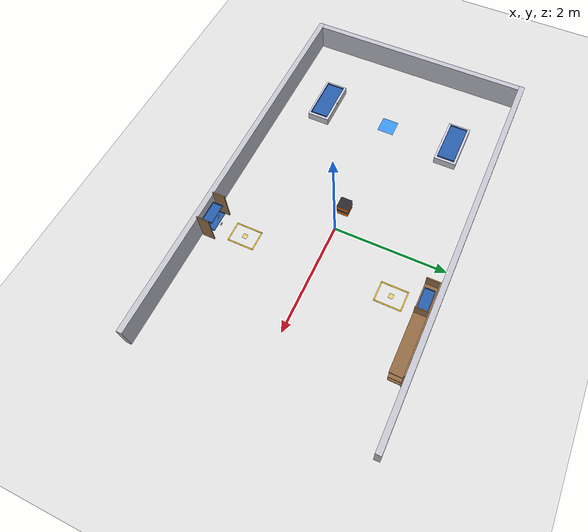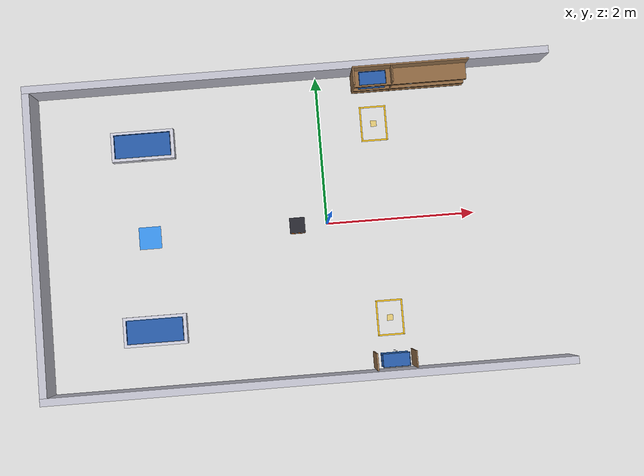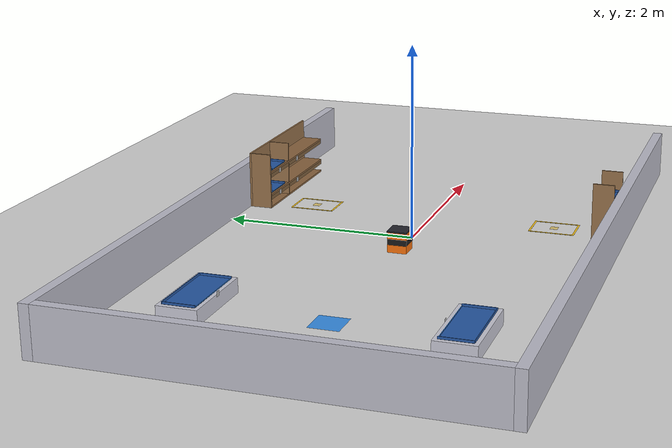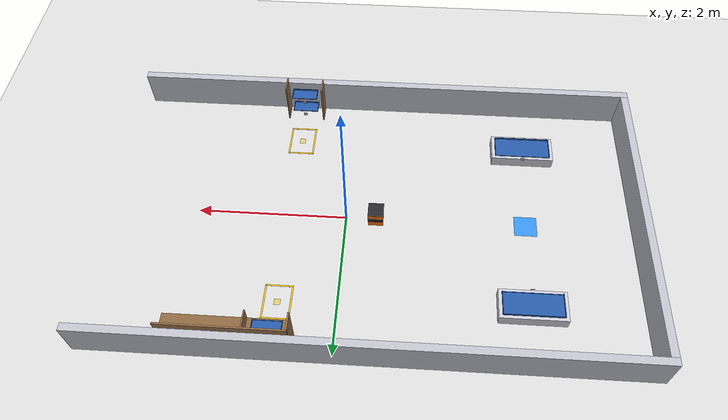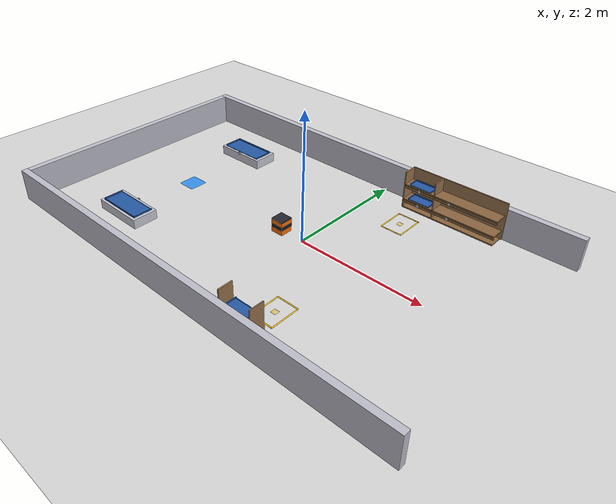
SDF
<sdf version="1.6">
 <world name="warehouse">
  <model name="ground_plane">
   <static>true</static>
   <link name="link">
    <collision name="col">
     <geometry><plane><normal>0 0 1</normal><size>10.0 6.0</size></plane></geometry>
     <surface><friction><ode><mu>1.0</mu><mu2>1.0</mu2></ode></friction></surface>
    </collision>
    <visual name="vis">
     <cast_shadows>false</cast_shadows>
     <geometry><plane><normal>0 0 1</normal><size>10.0 6.0</size></plane></geometry>
     <material><ambient>0.85 0.85 0.85 1</ambient><diffuse>0.85 0.85 0.85 1</diffuse></material>
    </visual>
   </link>
  </model>
  <model name="wall_north">
   <static>true</static>
   <pose>-0.4000 2.0500 0.2500 0.000000 0.000000 0.000000</pose>
   <link name="link">
    <collision name="col">
     <geometry><box><size>7.0 0.1 0.5</size></box></geometry>
     <surface><friction><ode><mu>1.0</mu><mu2>1.0</mu2></ode></friction></surface>
    </collision>
    <visual name="vis">
     <cast_shadows>false</cast_shadows>
     <geometry><box><size>7.0 0.1 0.5</size></box></geometry>
     <material><ambient>0.75 0.75 0.80 1.0</ambient><diffuse>0.75 0.75 0.80 1.0</diffuse></material>
    </visual>
   </link>
  </model>
  <model name="wall_south">
   <static>true</static>
   <pose>-0.4000 -2.0500 0.2500 0.000000 0.000000 0.000000</pose>
   <link name="link">
    <collision name="col">
     <geometry><box><size>7.0 0.1 0.5</size></box></geometry>
     <surface><friction><ode><mu>1.0</mu><mu2>1.0</mu2></ode></friction></surface>
    </collision>
    <visual name="vis">
     <cast_shadows>false</cast_shadows>
     <geometry><box><size>7.0 0.1 0.5</size></box></geometry>
     <material><ambient>0.75 0.75 0.80 1.0</ambient><diffuse>0.75 0.75 0.80 1.0</diffuse></material>
    </visual>
   </link>
  </model>
  <model name="wall_west">
   <static>true</static>
   <pose>-3.8500 0.0000 0.2500 0.000000 0.000000 0.000000</pose>
   <link name="link">
    <collision name="col">
     <geometry><box><size>0.1 4.0 0.5</size></box></geometry>
     <surface><friction><ode><mu>1.0</mu><mu2>1.0</mu2></ode></friction></surface>
    </collision>
    <visual name="vis">
     <cast_shadows>false</cast_shadows>
     <geometry><box><size>0.1 4.0 0.5</size></box></geometry>
     <material><ambient>0.75 0.75 0.80 1.0</ambient><diffuse>0.75 0.75 0.80 1.0</diffuse></material>
    </visual>
   </link>
  </model>
  <model name="rack_a_back_wall">
   <static>true</static>
   <pose>1.2500 1.9900 0.3000 0.000000 0.000000 0.000000</pose>
   <link name="link">
    <collision name="col">
     <geometry><box><size>1.54 0.02 0.6</size></box></geometry>
     <surface><friction><ode><mu>0.5</mu><mu2>0.5</mu2></ode></friction></surface>
    </collision>
    <visual name="vis">
     <cast_shadows>false</cast_shadows>
     <geometry><box><size>1.54 0.02 0.6</size></box></geometry>
     <material><ambient>0.6 0.45 0.30 1.0</ambient><diffuse>0.6 0.45 0.30 1.0</diffuse></material>
    </visual>
   </link>
  </model>
  <model name="rack_a_level_1_plank">
   <static>true</static>
   <pose>1.2500 1.8700 0.1400 0.000000 0.000000 0.000000</pose>
   <link name="link">
    <collision name="col">
     <geometry><box><size>1.5 0.22 0.02</size></box></geometry>
     <surface><friction><ode><mu>0.7</mu><mu2>0.7</mu2></ode></friction></surface>
    </collision>
    <visual name="vis">
     <cast_shadows>false</cast_shadows>
     <geometry><box><size>1.5 0.22 0.02</size></box></geometry>
     <material><ambient>0.55 0.40 0.25 1.0</ambient><diffuse>0.55 0.40 0.25 1.0</diffuse></material>
    </visual>
   </link>
  </model>
  <model name="rack_a_level_2_plank">
   <static>true</static>
   <pose>1.2500 1.8700 0.3900 0.000000 0.000000 0.000000</pose>
   <link name="link">
    <collision name="col">
     <geometry><box><size>1.5 0.22 0.02</size></box></geometry>
     <surface><friction><ode><mu>0.7</mu><mu2>0.7</mu2></ode></friction></surface>
    </collision>
    <visual name="vis">
     <cast_shadows>false</cast_shadows>
     <geometry><box><size>1.5 0.22 0.02</size></box></geometry>
     <material><ambient>0.55 0.40 0.25 1.0</ambient><diffuse>0.55 0.40 0.25 1.0</diffuse></material>
    </visual>
   </link>
  </model>
  <model name="rack_a_floor_plank">
   <static>true</static>
   <pose>1.2500 1.8700 0.0050 0.000000 0.000000 0.000000</pose>
   <link name="link">
    <collision name="col">
     <geometry><box><size>1.5 0.22 0.02</size></box></geometry>
     <surface><friction><ode><mu>0.7</mu><mu2>0.7</mu2></ode></friction></surface>
    </collision>
    <visual name="vis">
     <cast_shadows>false</cast_shadows>
     <geometry><box><size>1.5 0.22 0.02</size></box></geometry>
     <material><ambient>0.55 0.40 0.25 1.0</ambient><diffuse>0.55 0.40 0.25 1.0</diffuse></material>
    </visual>
   </link>
  </model>
  <model name="rack_a_left_side">
   <static>true</static>
   <pose>0.4900 1.8700 0.3000 0.000000 0.000000 0.000000</pose>
   <link name="link">
    <collision name="col">
     <geometry><box><size>0.02 0.22 0.6</size></box></geometry>
     <surface><friction><ode><mu>0.5</mu><mu2>0.5</mu2></ode></friction></surface>
    </collision>
    <visual name="vis">
     <cast_shadows>false</cast_shadows>
     <geometry><box><size>0.02 0.22 0.6</size></box></geometry>
     <material><ambient>0.6 0.45 0.30 1.0</ambient><diffuse>0.6 0.45 0.30 1.0</diffuse></material>
    </visual>
   </link>
  </model>
  <model name="rack_a_divider_0">
   <static>true</static>
   <pose>1.0000 1.8700 0.3000 0.000000 0.000000 0.000000</pose>
   <link name="link">
    <collision name="col">
     <geometry><box><size>0.015 0.22 0.6</size></box></geometry>
     <surface><friction><ode><mu>0.5</mu><mu2>0.5</mu2></ode></friction></surface>
    </collision>
    <visual name="vis">
     <cast_shadows>false</cast_shadows>
     <geometry><box><size>0.015 0.22 0.6</size></box></geometry>
     <material><ambient>0.6 0.45 0.30 1.0</ambient><diffuse>0.6 0.45 0.30 1.0</diffuse></material>
    </visual>
   </link>
  </model>
  <model name="rack_a_level_1_front_beam">
   <static>true</static>
   <pose>1.2500 1.7650 0.1100 0.000000 0.000000 0.000000</pose>
   <link name="link">
    <visual name="vis">
     <cast_shadows>false</cast_shadows>
     <geometry><box><size>1.5 0.01 0.04</size></box></geometry>
     <material><ambient>0.50 0.38 0.24 1.0</ambient><diffuse>0.50 0.38 0.24 1.0</diffuse></material>
    </visual>
   </link>
  </model>
  <model name="rack_a_level_2_front_beam">
   <static>true</static>
   <pose>1.2500 1.7650 0.3600 0.000000 0.000000 0.000000</pose>
   <link name="link">
    <visual name="vis">
     <cast_shadows>false</cast_shadows>
     <geometry><box><size>1.5 0.01 0.04</size></box></geometry>
     <material><ambient>0.50 0.38 0.24 1.0</ambient><diffuse>0.50 0.38 0.24 1.0</diffuse></material>
    </visual>
   </link>
  </model>
  <model name="tag_slot_0">
   <static>true</static>
   <pose>0.7500 1.7590 0.1100 0.000000 0.000000 3.141593</pose>
   <link name="link">
    <collision name="col"><geometry><box><size>0.05 0.001 0.05</size></box></geometry></collision>
    <visual name="vis">
     <cast_shadows>false</cast_shadows>
     <geometry><box><size>0.05 0.001 0.05</size></box></geometry>
     <material>
      <script>
       <uri>model://aruco_tags/materials/scripts</uri>
       <uri>model://aruco_tags/materials/textures</uri>
       <name>Aruco/Tag0</name>
      </script>
     </material>
    </visual>
   </link>
  </model>
  <model name="tag_slot_1">
   <static>true</static>
   <pose>1.2500 1.7590 0.1100 0.000000 0.000000 3.141593</pose>
   <link name="link">
    <collision name="col"><geometry><box><size>0.05 0.001 0.05</size></box></geometry></collision>
    <visual name="vis">
     <cast_shadows>false</cast_shadows>
     <geometry><box><size>0.05 0.001 0.05</size></box></geometry>
     <material>
      <script>
       <uri>model://aruco_tags/materials/scripts</uri>
       <uri>model://aruco_tags/materials/textures</uri>
       <name>Aruco/Tag1</name>
      </script>
     </material>
    </visual>
   </link>
  </model>
  <model name="tag_slot_3">
   <static>true</static>
   <pose>0.7500 1.7590 0.3600 0.000000 0.000000 3.141593</pose>
   <link name="link">
    <collision name="col"><geometry><box><size>0.05 0.001 0.05</size></box></geometry></collision>
    <visual name="vis">
     <cast_shadows>false</cast_shadows>
     <geometry><box><size>0.05 0.001 0.05</size></box></geometry>
     <material>
      <script>
       <uri>model://aruco_tags/materials/scripts</uri>
       <uri>model://aruco_tags/materials/textures</uri>
       <name>Aruco/Tag3</name>
      </script>
     </material>
    </visual>
   </link>
  </model>
  <model name="tag_slot_4">
   <static>true</static>
   <pose>1.2500 1.7590 0.3600 0.000000 0.000000 3.141593</pose>
   <link name="link">
    <collision name="col"><geometry><box><size>0.05 0.001 0.05</size></box></geometry></collision>
    <visual name="vis">
     <cast_shadows>false</cast_shadows>
     <geometry><box><size>0.05 0.001 0.05</size></box></geometry>
     <material>
      <script>
       <uri>model://aruco_tags/materials/scripts</uri>
       <uri>model://aruco_tags/materials/textures</uri>
       <name>Aruco/Tag4</name>
      </script>
     </material>
    </visual>
   </link>
  </model>
  <model name="shelf_tray_0">
   <static>true</static>
   <pose>0.7500 1.8700 0.1500 0.000000 0.000000 0.000000</pose>
   <link name="link">
    <visual name="bottom_vis">
     <pose>0 0 0.001 0 0 0</pose>
     <geometry><box><size>0.36 0.18 0.002</size></box></geometry>
     <material><ambient>0.15 0.35 0.65 1.0</ambient><diffuse>0.15 0.35 0.65 1.0</diffuse></material>
    </visual>
    <visual name="back_wall_vis">
     <pose>0 0.087 0.012 0 0 0</pose>
     <geometry><box><size>0.36 0.006 0.024</size></box></geometry>
     <material><ambient>0.15 0.35 0.65 1.0</ambient><diffuse>0.15 0.35 0.65 1.0</diffuse></material>
    </visual>
    <visual name="left_wall_vis">
     <pose>-0.177 0 0.012 0 0 0</pose>
     <geometry><box><size>0.006 0.18 0.024</size></box></geometry>
     <material><ambient>0.15 0.35 0.65 1.0</ambient><diffuse>0.15 0.35 0.65 1.0</diffuse></material>
    </visual>
    <visual name="right_wall_vis">
     <pose>0.177 0 0.012 0 0 0</pose>
     <geometry><box><size>0.006 0.18 0.024</size></box></geometry>
     <material><ambient>0.15 0.35 0.65 1.0</ambient><diffuse>0.15 0.35 0.65 1.0</diffuse></material>
    </visual>
    <visual name="front_lip_vis">
     <pose>0 -0.087 0.004 0 0 0</pose>
     <geometry><box><size>0.36 0.006 0.008</size></box></geometry>
     <material><ambient>0.20 0.50 0.85 1.0</ambient><diffuse>0.20 0.50 0.85 1.0</diffuse></material>
    </visual>
    <collision name="back_col">
     <pose>0 0.087 0.012 0 0 0</pose>
     <geometry><box><size>0.36 0.006 0.024</size></box></geometry>
    </collision>
    <collision name="left_col">
     <pose>-0.177 0 0.012 0 0 0</pose>
     <geometry><box><size>0.006 0.18 0.024</size></box></geometry>
    </collision>
    <collision name="right_col">
     <pose>0.177 0 0.012 0 0 0</pose>
     <geometry><box><size>0.006 0.18 0.024</size></box></geometry>
    </collision>
   </link>
  </model>
  <model name="shelf_tray_3">
   <static>true</static>
   <pose>0.7500 1.8700 0.4000 0.000000 0.000000 0.000000</pose>
   <link name="link">
    <visual name="bottom_vis">
     <pose>0 0 0.001 0 0 0</pose>
     <geometry><box><size>0.36 0.18 0.002</size></box></geometry>
     <material><ambient>0.15 0.35 0.65 1.0</ambient><diffuse>0.15 0.35 0.65 1.0</diffuse></material>
    </visual>
    <visual name="back_wall_vis">
     <pose>0 0.087 0.012 0 0 0</pose>
     <geometry><box><size>0.36 0.006 0.024</size></box></geometry>
     <material><ambient>0.15 0.35 0.65 1.0</ambient><diffuse>0.15 0.35 0.65 1.0</diffuse></material>
    </visual>
    <visual name="left_wall_vis">
     <pose>-0.177 0 0.012 0 0 0</pose>
     <geometry><box><size>0.006 0.18 0.024</size></box></geometry>
     <material><ambient>0.15 0.35 0.65 1.0</ambient><diffuse>0.15 0.35 0.65 1.0</diffuse></material>
    </visual>
    <visual name="right_wall_vis">
     <pose>0.177 0 0.012 0 0 0</pose>
     <geometry><box><size>0.006 0.18 0.024</size></box></geometry>
     <material><ambient>0.15 0.35 0.65 1.0</ambient><diffuse>0.15 0.35 0.65 1.0</diffuse></material>
    </visual>
    <visual name="front_lip_vis">
     <pose>0 -0.087 0.004 0 0 0</pose>
     <geometry><box><size>0.36 0.006 0.008</size></box></geometry>
     <material><ambient>0.20 0.50 0.85 1.0</ambient><diffuse>0.20 0.50 0.85 1.0</diffuse></material>
    </visual>
    <collision name="back_col">
     <pose>0 0.087 0.012 0 0 0</pose>
     <geometry><box><size>0.36 0.006 0.024</size></box></geometry>
    </collision>
    <collision name="left_col">
     <pose>-0.177 0 0.012 0 0 0</pose>
     <geometry><box><size>0.006 0.18 0.024</size></box></geometry>
    </collision>
    <collision name="right_col">
     <pose>0.177 0 0.012 0 0 0</pose>
     <geometry><box><size>0.006 0.18 0.024</size></box></geometry>
    </collision>
   </link>
  </model>
  <model name="rack_b_left_side">
   <static>true</static>
   <pose>0.4900 -1.8700 0.3000 0.000000 0.000000 0.000000</pose>
   <link name="link">
    <collision name="col">
     <geometry><box><size>0.02 0.22 0.6</size></box></geometry>
     <surface><friction><ode><mu>0.5</mu><mu2>0.5</mu2></ode></friction></surface>
    </collision>
    <visual name="vis">
     <cast_shadows>false</cast_shadows>
     <geometry><box><size>0.02 0.22 0.6</size></box></geometry>
     <material><ambient>0.6 0.45 0.30 1.0</ambient><diffuse>0.6 0.45 0.30 1.0</diffuse></material>
    </visual>
   </link>
  </model>
  <model name="rack_b_divider_0">
   <static>true</static>
   <pose>1.0000 -1.8700 0.3000 0.000000 0.000000 0.000000</pose>
   <link name="link">
    <collision name="col">
     <geometry><box><size>0.015 0.22 0.6</size></box></geometry>
     <surface><friction><ode><mu>0.5</mu><mu2>0.5</mu2></ode></friction></surface>
    </collision>
    <visual name="vis">
     <cast_shadows>false</cast_shadows>
     <geometry><box><size>0.015 0.22 0.6</size></box></geometry>
     <material><ambient>0.6 0.45 0.30 1.0</ambient><diffuse>0.6 0.45 0.30 1.0</diffuse></material>
    </visual>
   </link>
  </model>
  <model name="tag_slot_6">
   <static>true</static>
   <pose>0.7500 -1.7590 0.1100 0.000000 0.000000 0.000000</pose>
   <link name="link">
    <collision name="col"><geometry><box><size>0.05 0.001 0.05</size></box></geometry></collision>
    <visual name="vis">
     <cast_shadows>false</cast_shadows>
     <geometry><box><size>0.05 0.001 0.05</size></box></geometry>
     <material>
      <script>
       <uri>model://aruco_tags/materials/scripts</uri>
       <uri>model://aruco_tags/materials/textures</uri>
       <name>Aruco/Tag6</name>
      </script>
     </material>
    </visual>
   </link>
  </model>
  <model name="tag_slot_9">
   <static>true</static>
   <pose>0.7500 -1.7590 0.3600 0.000000 0.000000 0.000000</pose>
   <link name="link">
    <collision name="col"><geometry><box><size>0.05 0.001 0.05</size></box></geometry></collision>
    <visual name="vis">
     <cast_shadows>false</cast_shadows>
     <geometry><box><size>0.05 0.001 0.05</size></box></geometry>
     <material>
      <script>
       <uri>model://aruco_tags/materials/scripts</uri>
       <uri>model://aruco_tags/materials/textures</uri>
       <name>Aruco/Tag9</name>
      </script>
     </material>
    </visual>
   </link>
  </model>
  <model name="shelf_tray_6">
   <static>true</static>
   <pose>0.7500 -1.8700 0.1500 0.000000 0.000000 0.000000</pose>
   <link name="link">
    <visual name="bottom_vis">
     <pose>0 0 0.001 0 0 0</pose>
     <geometry><box><size>0.36 0.18 0.002</size></box></geometry>
     <material><ambient>0.15 0.35 0.65 1.0</ambient><diffuse>0.15 0.35 0.65 1.0</diffuse></material>
    </visual>
    <visual name="back_wall_vis">
     <pose>0 -0.087 0.012 0 0 0</pose>
     <geometry><box><size>0.36 0.006 0.024</size></box></geometry>
     <material><ambient>0.15 0.35 0.65 1.0</ambient><diffuse>0.15 0.35 0.65 1.0</diffuse></material>
    </visual>
    <visual name="left_wall_vis">
     <pose>-0.177 0 0.012 0 0 0</pose>
     <geometry><box><size>0.006 0.18 0.024</size></box></geometry>
     <material><ambient>0.15 0.35 0.65 1.0</ambient><diffuse>0.15 0.35 0.65 1.0</diffuse></material>
    </visual>
    <visual name="right_wall_vis">
     <pose>0.177 0 0.012 0 0 0</pose>
     <geometry><box><size>0.006 0.18 0.024</size></box></geometry>
     <material><ambient>0.15 0.35 0.65 1.0</ambient><diffuse>0.15 0.35 0.65 1.0</diffuse></material>
    </visual>
    <visual name="front_lip_vis">
     <pose>0 0.087 0.004 0 0 0</pose>
     <geometry><box><size>0.36 0.006 0.008</size></box></geometry>
     <material><ambient>0.20 0.50 0.85 1.0</ambient><diffuse>0.20 0.50 0.85 1.0</diffuse></material>
    </visual>
    <collision name="back_col">
     <pose>0 -0.087 0.012 0 0 0</pose>
     <geometry><box><size>0.36 0.006 0.024</size></box></geometry>
    </collision>
    <collision name="left_col">
     <pose>-0.177 0 0.012 0 0 0</pose>
     <geometry><box><size>0.006 0.18 0.024</size></box></geometry>
    </collision>
    <collision name="right_col">
     <pose>0.177 0 0.012 0 0 0</pose>
     <geometry><box><size>0.006 0.18 0.024</size></box></geometry>
    </collision>
   </link>
  </model>
  <model name="shelf_tray_9">
   <static>true</static>
   <pose>0.7500 -1.8700 0.4000 0.000000 0.000000 0.000000</pose>
   <link name="link">
    <visual name="bottom_vis">
     <pose>0 0 0.001 0 0 0</pose>
     <geometry><box><size>0.36 0.18 0.002</size></box></geometry>
     <material><ambient>0.15 0.35 0.65 1.0</ambient><diffuse>0.15 0.35 0.65 1.0</diffuse></material>
    </visual>
    <visual name="back_wall_vis">
     <pose>0 -0.087 0.012 0 0 0</pose>
     <geometry><box><size>0.36 0.006 0.024</size></box></geometry>
     <material><ambient>0.15 0.35 0.65 1.0</ambient><diffuse>0.15 0.35 0.65 1.0</diffuse></material>
    </visual>
    <visual name="left_wall_vis">
     <pose>-0.177 0 0.012 0 0 0</pose>
     <geometry><box><size>0.006 0.18 0.024</size></box></geometry>
     <material><ambient>0.15 0.35 0.65 1.0</ambient><diffuse>0.15 0.35 0.65 1.0</diffuse></material>
    </visual>
    <visual name="right_wall_vis">
     <pose>0.177 0 0.012 0 0 0</pose>
     <geometry><box><size>0.006 0.18 0.024</size></box></geometry>
     <material><ambient>0.15 0.35 0.65 1.0</ambient><diffuse>0.15 0.35 0.65 1.0</diffuse></material>
    </visual>
    <visual name="front_lip_vis">
     <pose>0 0.087 0.004 0 0 0</pose>
     <geometry><box><size>0.36 0.006 0.008</size></box></geometry>
     <material><ambient>0.20 0.50 0.85 1.0</ambient><diffuse>0.20 0.50 0.85 1.0</diffuse></material>
    </visual>
    <collision name="back_col">
     <pose>0 -0.087 0.012 0 0 0</pose>
     <geometry><box><size>0.36 0.006 0.024</size></box></geometry>
    </collision>
    <collision name="left_col">
     <pose>-0.177 0 0.012 0 0 0</pose>
     <geometry><box><size>0.006 0.18 0.024</size></box></geometry>
    </collision>
    <collision name="right_col">
     <pose>0.177 0 0.012 0 0 0</pose>
     <geometry><box><size>0.006 0.18 0.024</size></box></geometry>
    </collision>
   </link>
  </model>
  <model name="table_in">
   <static>true</static>
   <pose>-2.4000 1.2500 0.0750 0.000000 0.000000 0.000000</pose>
   <link name="link">
    <collision name="col">
     <geometry><box><size>0.85 0.4 0.15</size></box></geometry>
     <surface><friction><ode><mu>0.9</mu><mu2>0.9</mu2></ode></friction></surface>
    </collision>
    <visual name="vis">
     <cast_shadows>false</cast_shadows>
     <geometry><box><size>0.85 0.4 0.15</size></box></geometry>
     <material><ambient>0.80 0.80 0.85 1.0</ambient><diffuse>0.80 0.80 0.85 1.0</diffuse></material>
    </visual>
   </link>
  </model>
  <model name="station_tray_in">
   <static>true</static>
   <pose>-2.4000 1.2500 0.1500 0.000000 0.000000 0.000000</pose>
   <link name="link">
    <visual name="bottom_vis">
     <pose>0 0 0.001 0 0 0</pose>
     <geometry><box><size>0.76 0.32 0.002</size></box></geometry>
     <material><ambient>0.15 0.35 0.65 1.0</ambient><diffuse>0.15 0.35 0.65 1.0</diffuse></material>
    </visual>
    <visual name="back_wall_vis">
     <pose>0 0.157 0.0125 0 0 0</pose>
     <geometry><box><size>0.76 0.006 0.025</size></box></geometry>
     <material><ambient>0.15 0.35 0.65 1.0</ambient><diffuse>0.15 0.35 0.65 1.0</diffuse></material>
    </visual>
    <visual name="left_wall_vis">
     <pose>-0.377 0 0.0125 0 0 0</pose>
     <geometry><box><size>0.006 0.32 0.025</size></box></geometry>
     <material><ambient>0.15 0.35 0.65 1.0</ambient><diffuse>0.15 0.35 0.65 1.0</diffuse></material>
    </visual>
    <visual name="right_wall_vis">
     <pose>0.377 0 0.0125 0 0 0</pose>
     <geometry><box><size>0.006 0.32 0.025</size></box></geometry>
     <material><ambient>0.15 0.35 0.65 1.0</ambient><diffuse>0.15 0.35 0.65 1.0</diffuse></material>
    </visual>
    <visual name="front_lip_vis">
     <pose>0 -0.157 0.004 0 0 0</pose>
     <geometry><box><size>0.76 0.006 0.008</size></box></geometry>
     <material><ambient>0.20 0.50 0.85 1.0</ambient><diffuse>0.20 0.50 0.85 1.0</diffuse></material>
    </visual>
    <collision name="back_col">
     <pose>0 0.157 0.0125 0 0 0</pose>
     <geometry><box><size>0.76 0.006 0.025</size></box></geometry>
    </collision>
    <collision name="left_col">
     <pose>-0.377 0 0.0125 0 0 0</pose>
     <geometry><box><size>0.006 0.32 0.025</size></box></geometry>
    </collision>
    <collision name="right_col">
     <pose>0.377 0 0.0125 0 0 0</pose>
     <geometry><box><size>0.006 0.32 0.025</size></box></geometry>
    </collision>
   </link>
  </model>
  <model name="tag_in">
   <static>true</static>
   <pose>-2.4000 1.0490 0.1500 0.000000 0.000000 3.141593</pose>
   <link name="link">
    <collision name="col"><geometry><box><size>0.05 0.001 0.05</size></box></geometry></collision>
    <visual name="vis">
     <cast_shadows>false</cast_shadows>
     <geometry><box><size>0.05 0.001 0.05</size></box></geometry>
     <material>
      <script>
       <uri>model://aruco_tags/materials/scripts</uri>
       <uri>model://aruco_tags/materials/textures</uri>
       <name>Aruco/Tag30</name>
      </script>
     </material>
    </visual>
   </link>
  </model>
  <model name="table_out">
   <static>true</static>
   <pose>-2.4000 -1.2500 0.0750 0.000000 0.000000 0.000000</pose>
   <link name="link">
    <collision name="col">
     <geometry><box><size>0.85 0.4 0.15</size></box></geometry>
     <surface><friction><ode><mu>0.9</mu><mu2>0.9</mu2></ode></friction></surface>
    </collision>
    <visual name="vis">
     <cast_shadows>false</cast_shadows>
     <geometry><box><size>0.85 0.4 0.15</size></box></geometry>
     <material><ambient>0.80 0.80 0.85 1.0</ambient><diffuse>0.80 0.80 0.85 1.0</diffuse></material>
    </visual>
   </link>
  </model>
  <model name="station_tray_out">
   <static>true</static>
   <pose>-2.4000 -1.2500 0.1500 0.000000 0.000000 0.000000</pose>
   <link name="link">
    <visual name="bottom_vis">
     <pose>0 0 0.001 0 0 0</pose>
     <geometry><box><size>0.76 0.32 0.002</size></box></geometry>
     <material><ambient>0.15 0.35 0.65 1.0</ambient><diffuse>0.15 0.35 0.65 1.0</diffuse></material>
    </visual>
    <visual name="back_wall_vis">
     <pose>0 -0.157 0.0125 0 0 0</pose>
     <geometry><box><size>0.76 0.006 0.025</size></box></geometry>
     <material><ambient>0.15 0.35 0.65 1.0</ambient><diffuse>0.15 0.35 0.65 1.0</diffuse></material>
    </visual>
    <visual name="left_wall_vis">
     <pose>-0.377 0 0.0125 0 0 0</pose>
     <geometry><box><size>0.006 0.32 0.025</size></box></geometry>
     <material><ambient>0.15 0.35 0.65 1.0</ambient><diffuse>0.15 0.35 0.65 1.0</diffuse></material>
    </visual>
    <visual name="right_wall_vis">
     <pose>0.377 0 0.0125 0 0 0</pose>
     <geometry><box><size>0.006 0.32 0.025</size></box></geometry>
     <material><ambient>0.15 0.35 0.65 1.0</ambient><diffuse>0.15 0.35 0.65 1.0</diffuse></material>
    </visual>
    <visual name="front_lip_vis">
     <pose>0 0.157 0.004 0 0 0</pose>
     <geometry><box><size>0.76 0.006 0.008</size></box></geometry>
     <material><ambient>0.20 0.50 0.85 1.0</ambient><diffuse>0.20 0.50 0.85 1.0</diffuse></material>
    </visual>
    <collision name="back_col">
     <pose>0 -0.157 0.0125 0 0 0</pose>
     <geometry><box><size>0.76 0.006 0.025</size></box></geometry>
    </collision>
    <collision name="left_col">
     <pose>-0.377 0 0.0125 0 0 0</pose>
     <geometry><box><size>0.006 0.32 0.025</size></box></geometry>
    </collision>
    <collision name="right_col">
     <pose>0.377 0 0.0125 0 0 0</pose>
     <geometry><box><size>0.006 0.32 0.025</size></box></geometry>
    </collision>
   </link>
  </model>
  <model name="tag_out">
   <static>true</static>
   <pose>-2.4000 -1.0490 0.1500 0.000000 0.000000 0.000000</pose>
   <link name="link">
    <collision name="col"><geometry><box><size>0.05 0.001 0.05</size></box></geometry></collision>
    <visual name="vis">
     <cast_shadows>false</cast_shadows>
     <geometry><box><size>0.05 0.001 0.05</size></box></geometry>
     <material>
      <script>
       <uri>model://aruco_tags/materials/scripts</uri>
       <uri>model://aruco_tags/materials/textures</uri>
       <name>Aruco/Tag31</name>
      </script>
     </material>
    </visual>
   </link>
  </model>
  <model name="floor_in">
   <static>true</static>
   <pose>-2.4000 1.2500 0.0010 0.000000 0.000000 0.000000</pose>
   <link name="link">
    <visual name="vis">
     <cast_shadows>false</cast_shadows>
     <geometry><box><size>0.3 0.3 0.001</size></box></geometry>
     <material><ambient>0.0 1.0 0.0 0.7</ambient><diffuse>0.0 1.0 0.0 0.7</diffuse></material>
    </visual>
   </link>
  </model>
  <model name="floor_out">
   <static>true</static>
   <pose>-2.4000 -1.2500 0.0010 0.000000 0.000000 0.000000</pose>
   <link name="link">
    <visual name="vis">
     <cast_shadows>false</cast_shadows>
     <geometry><box><size>0.3 0.3 0.001</size></box></geometry>
     <material><ambient>1.0 0.5 0.0 0.7</ambient><diffuse>1.0 0.5 0.0 0.7</diffuse></material>
    </visual>
   </link>
  </model>
  <model name="floor_home">
   <static>true</static>
   <pose>-2.4000 0.0000 0.0010 0.000000 0.000000 0.000000</pose>
   <link name="link">
    <visual name="vis">
     <cast_shadows>false</cast_shadows>
     <geometry><box><size>0.3 0.3 0.001</size></box></geometry>
     <material><ambient>0.0 0.5 1.0 0.7</ambient><diffuse>0.0 0.5 1.0 0.7</diffuse></material>
    </visual>
   </link>
  </model>
  <model name="docking_bay_rack_a_col_0">
   <static>true</static>
   <pose>0.7500 1.3250 0.0010 0.000000 0.000000 0.000000</pose>
   <link name="link">
    <visual name="border_front">
     <pose>0 0.22999999999999998 0 0 0 0</pose>
     <cast_shadows>false</cast_shadows>
     <geometry><box><size>0.36 0.02 0.001</size></box></geometry>
     <material><ambient>0.95 0.75 0.1 0.9</ambient><diffuse>0.95 0.75 0.1 0.9</diffuse></material>
    </visual>
    <visual name="border_back">
     <pose>0 -0.22999999999999998 0 0 0 0</pose>
     <cast_shadows>false</cast_shadows>
     <geometry><box><size>0.36 0.02 0.001</size></box></geometry>
     <material><ambient>0.95 0.75 0.1 0.9</ambient><diffuse>0.95 0.75 0.1 0.9</diffuse></material>
    </visual>
    <visual name="border_left">
     <pose>-0.16999999999999998 0 0 0 0 0</pose>
     <cast_shadows>false</cast_shadows>
     <geometry><box><size>0.02 0.48 0.001</size></box></geometry>
     <material><ambient>0.95 0.75 0.1 0.9</ambient><diffuse>0.95 0.75 0.1 0.9</diffuse></material>
    </visual>
    <visual name="border_right">
     <pose>0.16999999999999998 0 0 0 0 0</pose>
     <cast_shadows>false</cast_shadows>
     <geometry><box><size>0.02 0.48 0.001</size></box></geometry>
     <material><ambient>0.95 0.75 0.1 0.9</ambient><diffuse>0.95 0.75 0.1 0.9</diffuse></material>
    </visual>
    <visual name="center_mark">
     <cast_shadows>false</cast_shadows>
     <geometry><box><size>0.08 0.08 0.001</size></box></geometry>
     <material><ambient>0.95 0.75 0.1 0.5</ambient><diffuse>0.95 0.75 0.1 0.5</diffuse></material>
    </visual>
   </link>
  </model>
  <model name="docking_bay_rack_b_col_0">
   <static>true</static>
   <pose>0.7500 -1.3250 0.0010 0.000000 0.000000 0.000000</pose>
   <link name="link">
    <visual name="border_front">
     <pose>0 0.22999999999999998 0 0 0 0</pose>
     <cast_shadows>false</cast_shadows>
     <geometry><box><size>0.36 0.02 0.001</size></box></geometry>
     <material><ambient>0.95 0.75 0.1 0.9</ambient><diffuse>0.95 0.75 0.1 0.9</diffuse></material>
    </visual>
    <visual name="border_back">
     <pose>0 -0.22999999999999998 0 0 0 0</pose>
     <cast_shadows>false</cast_shadows>
     <geometry><box><size>0.36 0.02 0.001</size></box></geometry>
     <material><ambient>0.95 0.75 0.1 0.9</ambient><diffuse>0.95 0.75 0.1 0.9</diffuse></material>
    </visual>
    <visual name="border_left">
     <pose>-0.16999999999999998 0 0 0 0 0</pose>
     <cast_shadows>false</cast_shadows>
     <geometry><box><size>0.02 0.48 0.001</size></box></geometry>
     <material><ambient>0.95 0.75 0.1 0.9</ambient><diffuse>0.95 0.75 0.1 0.9</diffuse></material>
    </visual>
    <visual name="border_right">
     <pose>0.16999999999999998 0 0 0 0 0</pose>
     <cast_shadows>false</cast_shadows>
     <geometry><box><size>0.02 0.48 0.001</size></box></geometry>
     <material><ambient>0.95 0.75 0.1 0.9</ambient><diffuse>0.95 0.75 0.1 0.9</diffuse></material>
    </visual>
    <visual name="center_mark">
     <cast_shadows>false</cast_shadows>
     <geometry><box><size>0.08 0.08 0.001</size></box></geometry>
     <material><ambient>0.95 0.75 0.1 0.5</ambient><diffuse>0.95 0.75 0.1 0.5</diffuse></material>
    </visual>
   </link>
  </model>
  <model name="dynamic_obstacle">
   <pose>-0.4000 0.0000 0.1100 0 0 0</pose>
   <link name="obstacle_link">
    <gravity>false</gravity>
    <inertial>
     <mass>5.0</mass>
     <inertia><ixx>0.05</ixx><ixy>0</ixy><ixz>0</ixz><iyy>0.05</iyy><iyz>0</iyz><izz>0.05</izz></inertia>
    </inertial>
    <collision name="col">
     <geometry><box><size>0.2000 0.2000 0.2200</size></box></geometry>
     <surface><friction><ode><mu>0.0</mu><mu2>0.0</mu2></ode></friction></surface>
    </collision>
    <visual name="vis_box">
     <cast_shadows>false</cast_shadows>
     <geometry><box><size>0.2000 0.2000 0.2200</size></box></geometry>
     <material>
      <ambient>0.98 0.45 0.05 1</ambient>
      <diffuse>0.98 0.45 0.05 1</diffuse>
      <specular>0.3 0.3 0.3 1</specular>
     </material>
    </visual>
    <visual name="vis_lid">
     <cast_shadows>false</cast_shadows>
     <pose>0 0 0.1050 0 0 0</pose>
     <geometry><box><size>0.2040 0.2040 0.015</size></box></geometry>
     <material><ambient>0.15 0.15 0.18 1</ambient><diffuse>0.15 0.15 0.18 1</diffuse></material>
    </visual>
    <visual name="vis_stripe">
     <cast_shadows>false</cast_shadows>
     <geometry><box><size>0.2020 0.2020 0.06</size></box></geometry>
     <material><ambient>0.1 0.1 0.1 1</ambient><diffuse>0.1 0.1 0.1 1</diffuse></material>
    </visual>
   </link>
   <plugin name="dynamic_obstacle_planar_move" filename="libgazebo_ros_planar_move.so">
    <ros>
     <namespace>/dynamic_obstacle</namespace>
     <remapping>cmd_vel:=cmd_vel</remapping>
     <remapping>odom:=odom</remapping>
    </ros>
    <update_rate>50</update_rate>
    <publish_rate>20</publish_rate>
    <publish_odom>true</publish_odom>
    <publish_odom_tf>false</publish_odom_tf>
    <odometry_frame>odom_obstacle</odometry_frame>
    <robot_base_frame>obstacle_link</robot_base_frame>
   </plugin>
  </model>
 </world>
</sdf>
